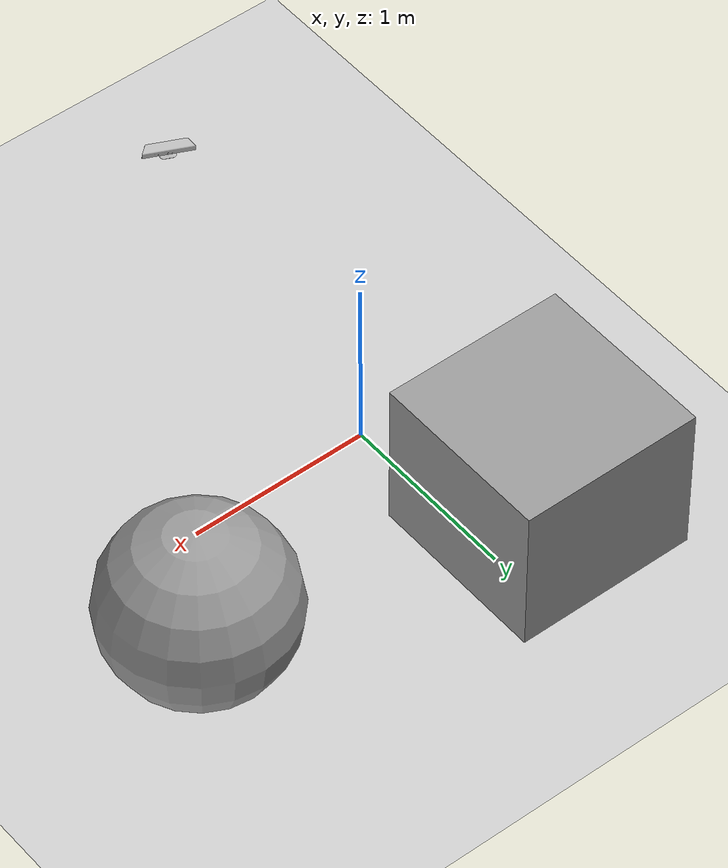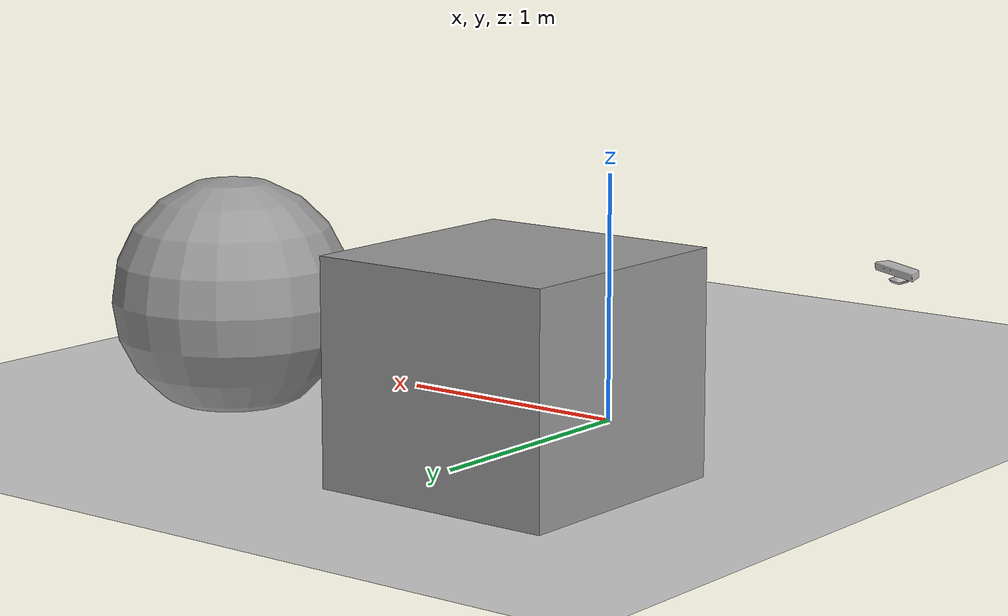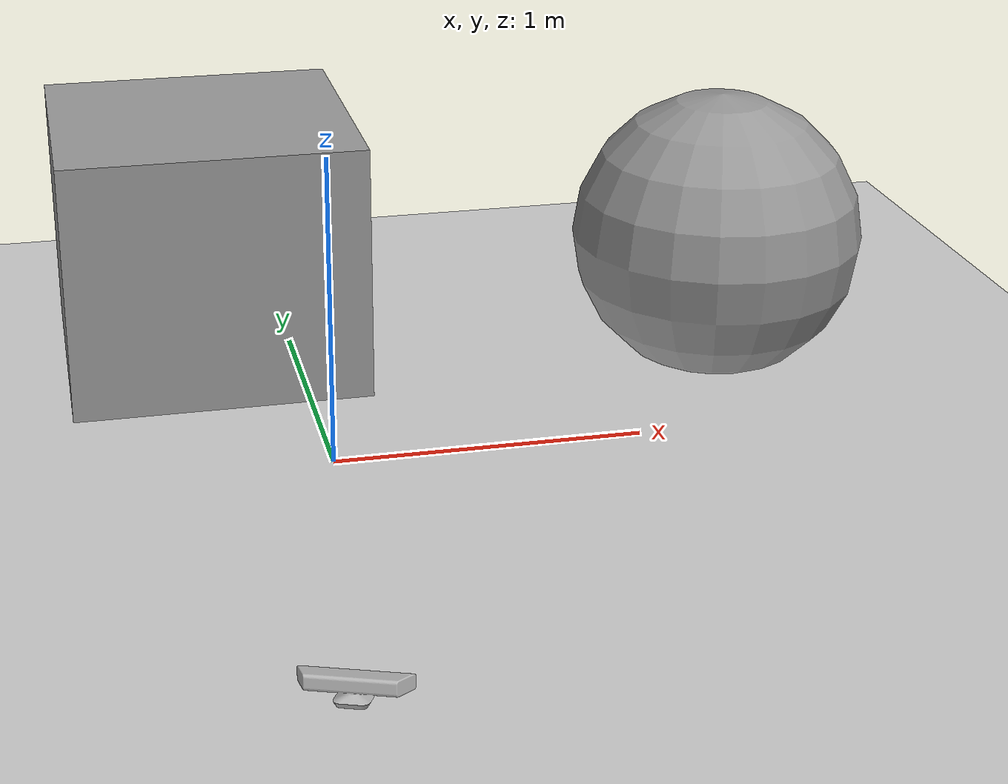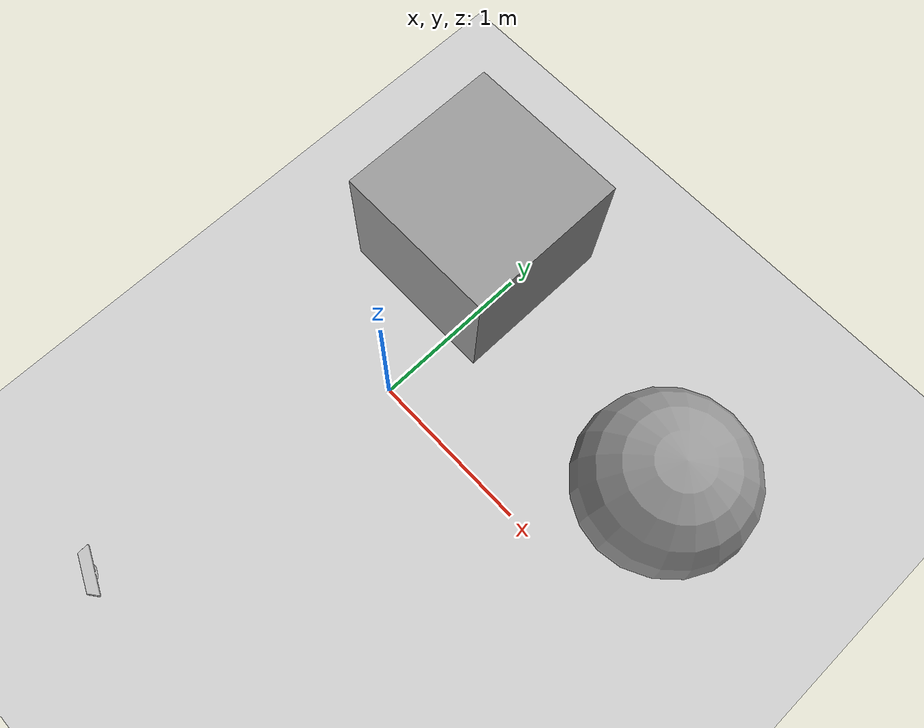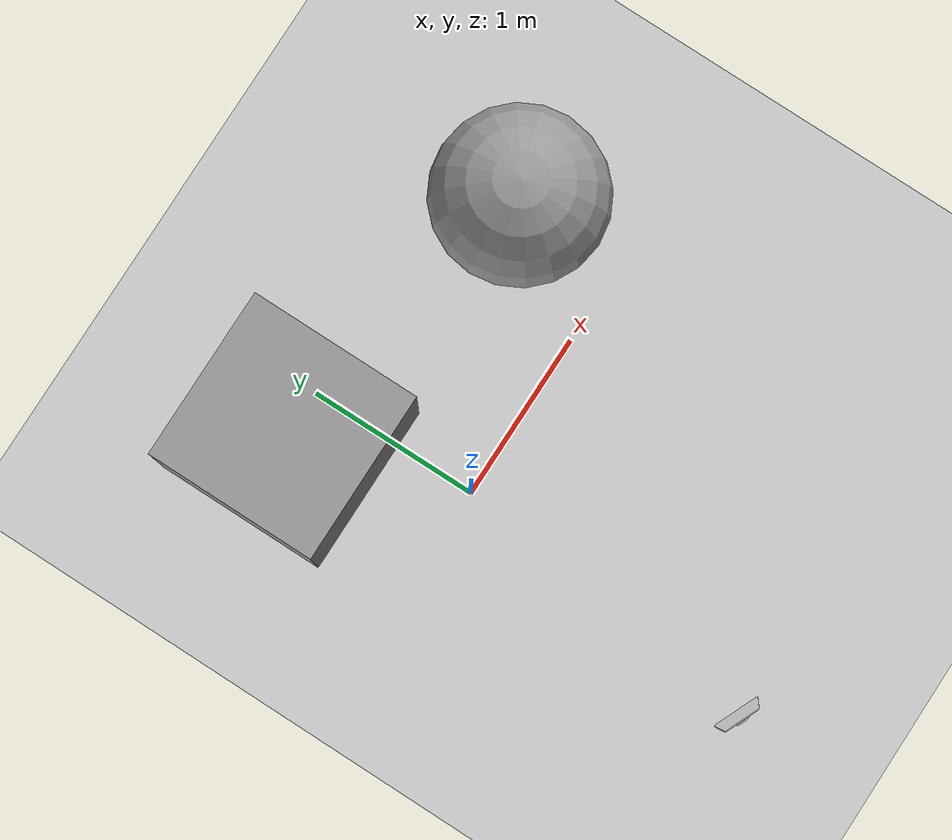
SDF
<sdf version="1.7">
 <world name="default">
  <light name="sun" type="directional">
   <pose>0 0 10 0 -0 0</pose>
   <diffuse>0.8 0.8 0.8 1</diffuse>
   <specular>0.2 0.2 0.2 1</specular>
   <attenuation>
    <range>1000</range>
    <constant>0.9</constant>
    <linear>0.01</linear>
    <quadratic>0.001</quadratic>
   </attenuation>
   <direction>-0.5 0.1 -0.9</direction>
   <spot><inner_angle>0</inner_angle><outer_angle>0</outer_angle><falloff>0</falloff></spot>
  </light>
  <model name="ground_plane">
   <static>1</static>
   <link name="link">
    <collision name="collision">
     <geometry><plane><normal>0 0 1</normal><size>100 100</size></plane></geometry>
     <surface>
      <contact><collide_bitmask>65535</collide_bitmask></contact>
      <friction><ode><mu>100</mu><mu2>50</mu2></ode></friction>
     </surface>
    </collision>
    <visual name="visual">
     <cast_shadows>0</cast_shadows>
     <geometry><plane><normal>0 0 1</normal><size>100 100</size></plane></geometry>
     <material>
      <script><uri>file://media/materials/scripts/gazebo.material</uri><name>Gazebo/Grey</name></script>
     </material>
    </visual>
   </link>
  </model>
  <gravity>0 0 -9.8</gravity>
  <magnetic_field>6e-06 2.3e-05 -4.2e-05</magnetic_field>
  <atmosphere type="adiabatic"/>
  <physics type="ode">
   <max_step_size>0.001</max_step_size>
   <real_time_factor>1</real_time_factor>
   <real_time_update_rate>1000</real_time_update_rate>
  </physics>
  <scene><ambient>0.4 0.4 0.4 1</ambient><background>0.7 0.7 0.7 1</background><shadows>1</shadows></scene>
  <audio><device>default</device></audio>
  <spherical_coordinates>
   <surface_model>EARTH_WGS84</surface_model>
   <latitude_deg>0</latitude_deg>
   <longitude_deg>0</longitude_deg>
   <elevation>0</elevation>
   <heading_deg>0</heading_deg>
  </spherical_coordinates>
  <model name="kinect">
   <static>1</static>
   <pose>-0.229699 -1.8082 0.361802 -0.035785 0.168928 1.16002</pose>
   <link name="link">
    <inertial><mass>0.1</mass></inertial>
    <collision name="collision">
     <geometry><box><size>0.073000 0.276000 0.072000</size></box></geometry>
    </collision>
    <visual name="visual"><geometry><mesh><uri>model://kinect/meshes/kinect.dae</uri></mesh></geometry></visual>
    <sensor name="camera" type="depth">
     <update_rate>0.0</update_rate>
     <camera>
      <horizontal_fov>1.0472</horizontal_fov>
      <image><width>640</width><height>480</height><format>R8G8B8</format></image>
      <clip><near>0.05</near><far>10</far></clip>
     </camera>
     <plugin name="camera_plugin" filename="libgazebo_ros_camera.so">
      <baseline>0.2</baseline>
      <alwaysOn>1</alwaysOn>
      <updateRate>0.0</updateRate>
      <cameraName>camera_ir</cameraName>
      <imageTopicName>/camera/color/image_raw</imageTopicName>
      <cameraInfoTopicName>/camera/color/camera_info</cameraInfoTopicName>
      <depthImageTopicName>/camera/depth/image_raw</depthImageTopicName>
      <depthImageCameraInfoTopicName>/camera/depth/camera_info</depthImageCameraInfoTopicName>
      <pointCloudTopicName>/camera/depth/points</pointCloudTopicName>
      <frameName>camera_link</frameName>
      <pointCloudCutoff>0.5</pointCloudCutoff>
      <pointCloudCutoffMax>3.0</pointCloudCutoffMax>
      <distortionK1>0</distortionK1>
      <distortionK2>0</distortionK2>
      <distortionK3>0</distortionK3>
      <distortionT1>0</distortionT1>
      <distortionT2>0</distortionT2>
      <CxPrime>0</CxPrime>
      <Cx>0</Cx>
      <Cy>0</Cy>
      <focalLength>0</focalLength>
      <hackBaseline>0</hackBaseline>
     </plugin>
    </sensor>
   </link>
   <plugin name="joy_control" filename="libjoy_control.so"/>
  </model>
  <model name="unit_box">
   <pose>-0.287698 0.975011 0.362405 0 -0 0</pose>
   <link name="link">
    <inertial>
     <mass>1</mass>
     <inertia>
      <ixx>0.166667</ixx>
      <ixy>0</ixy>
      <ixz>0</ixz>
      <iyy>0.166667</iyy>
      <iyz>0</iyz>
      <izz>0.166667</izz>
     </inertia>
    </inertial>
    <collision name="collision"><geometry><box><size>1 1 1</size></box></geometry></collision>
    <visual name="visual">
     <geometry><box><size>1 1 1</size></box></geometry>
     <material>
      <script><name>Gazebo/Grey</name><uri>file://media/materials/scripts/gazebo.material</uri></script>
     </material>
    </visual>
   </link>
  </model>
  <model name="unit_sphere">
   <pose>1.45514 0.632402 0.427199 0 -0 0</pose>
   <link name="link">
    <inertial>
     <mass>1</mass>
     <inertia><ixx>0.1</ixx><ixy>0</ixy><ixz>0</ixz><iyy>0.1</iyy><iyz>0</iyz><izz>0.1</izz></inertia>
    </inertial>
    <collision name="collision"><geometry><sphere><radius>0.5</radius></sphere></geometry></collision>
    <visual name="visual">
     <geometry><sphere><radius>0.5</radius></sphere></geometry>
     <material>
      <script><name>Gazebo/Grey</name><uri>file://media/materials/scripts/gazebo.material</uri></script>
     </material>
    </visual>
   </link>
  </model>
 </world>
</sdf>
